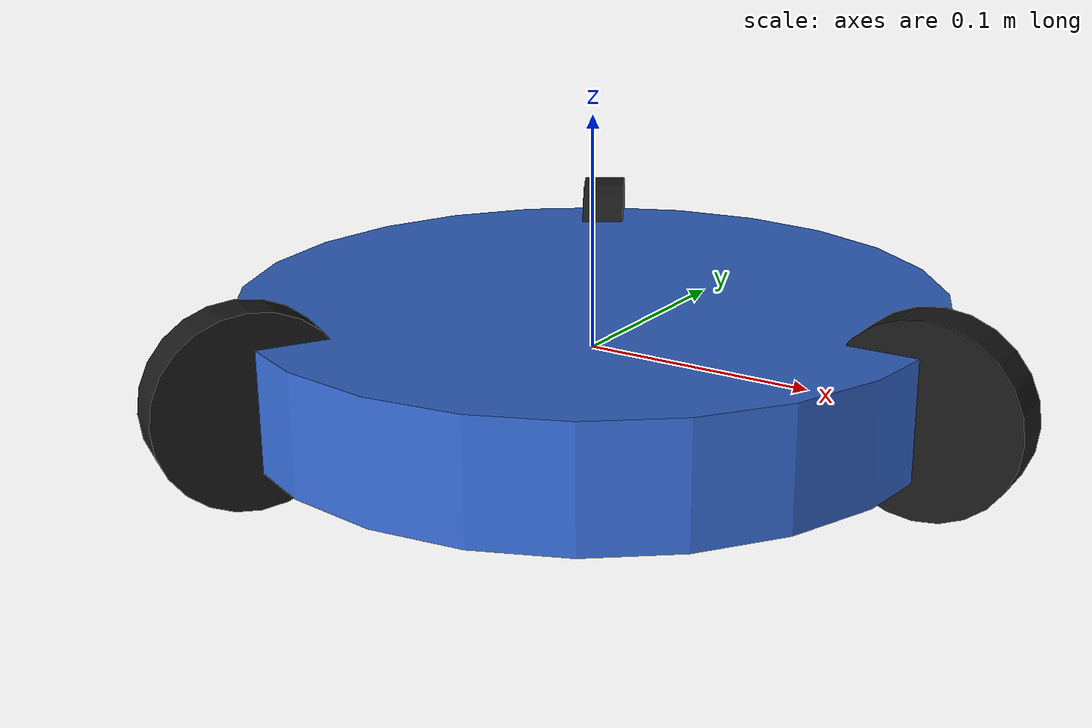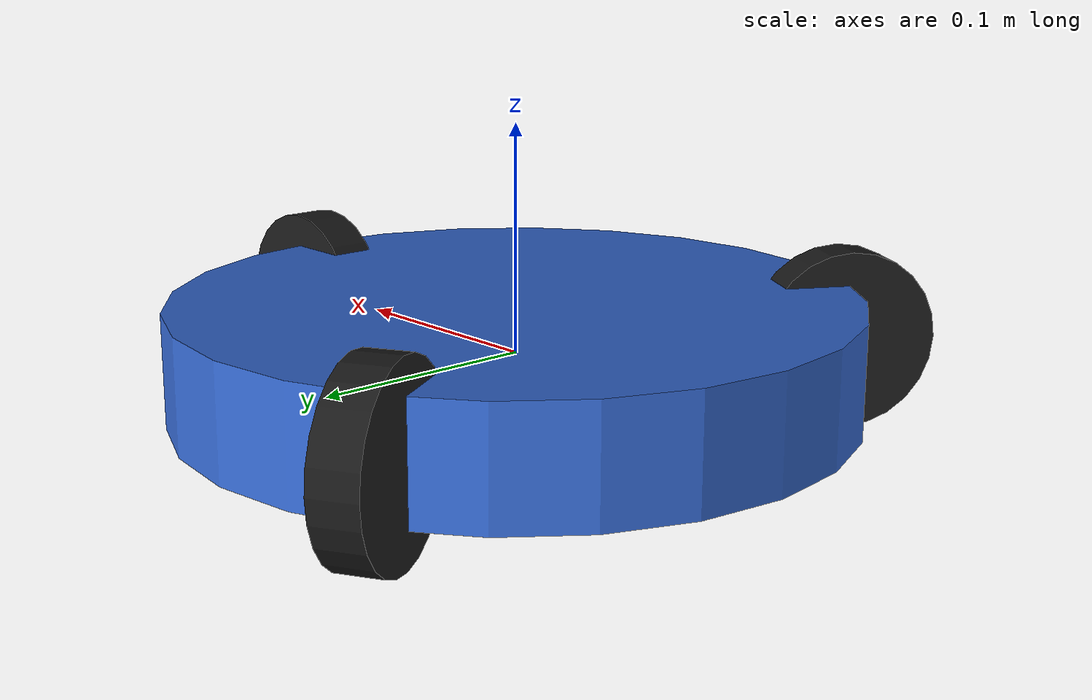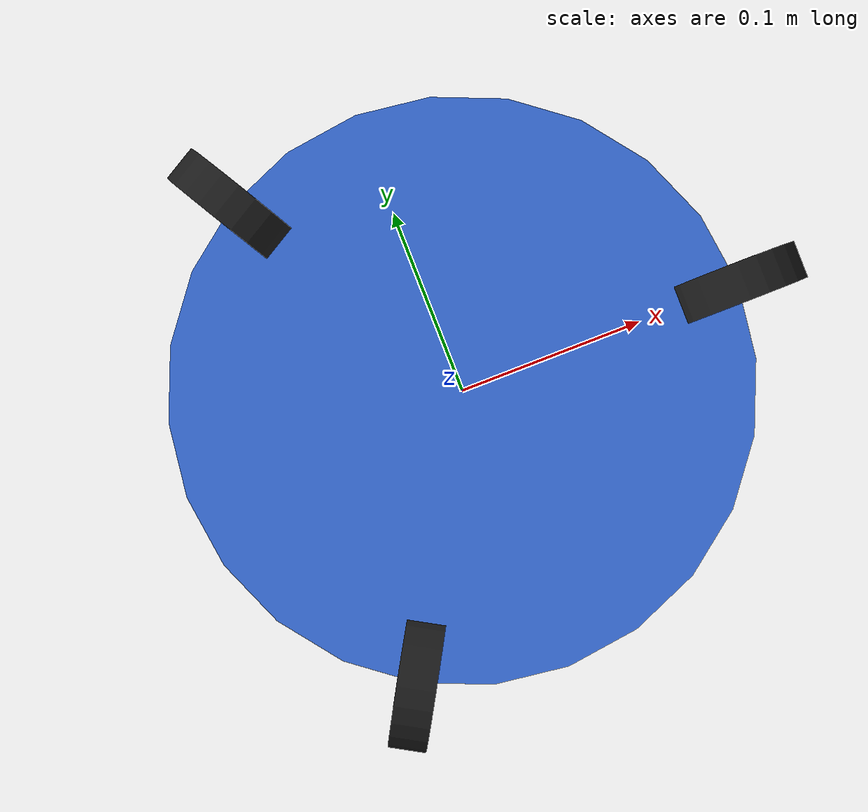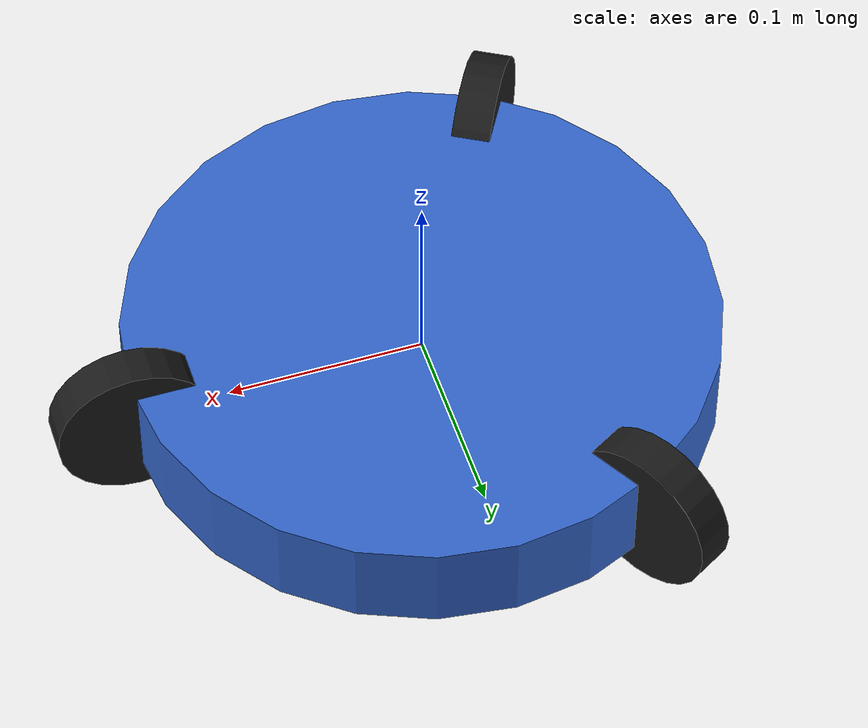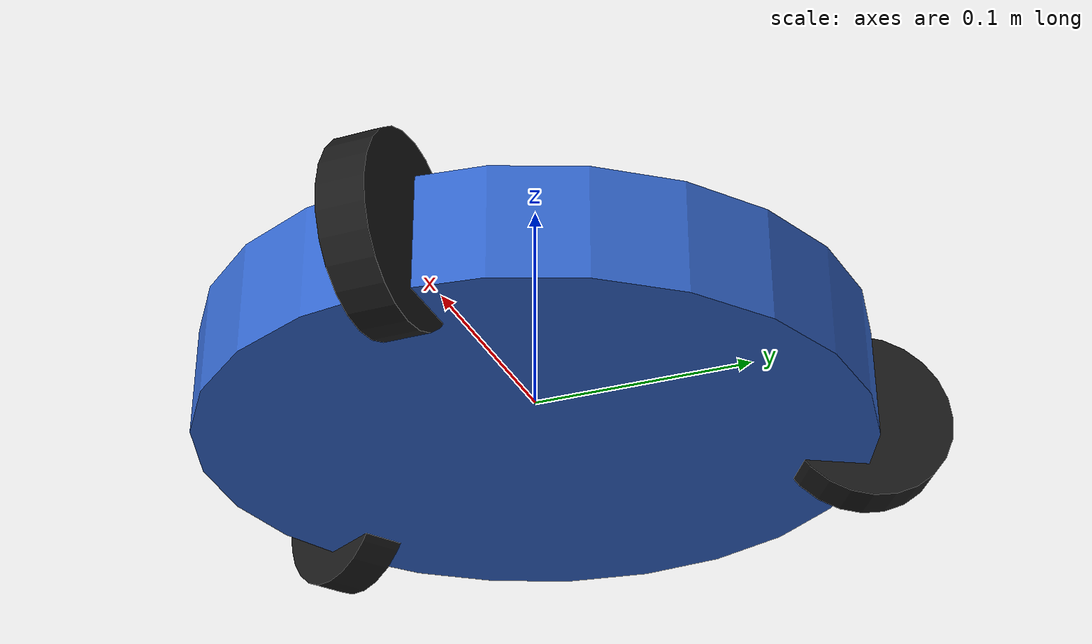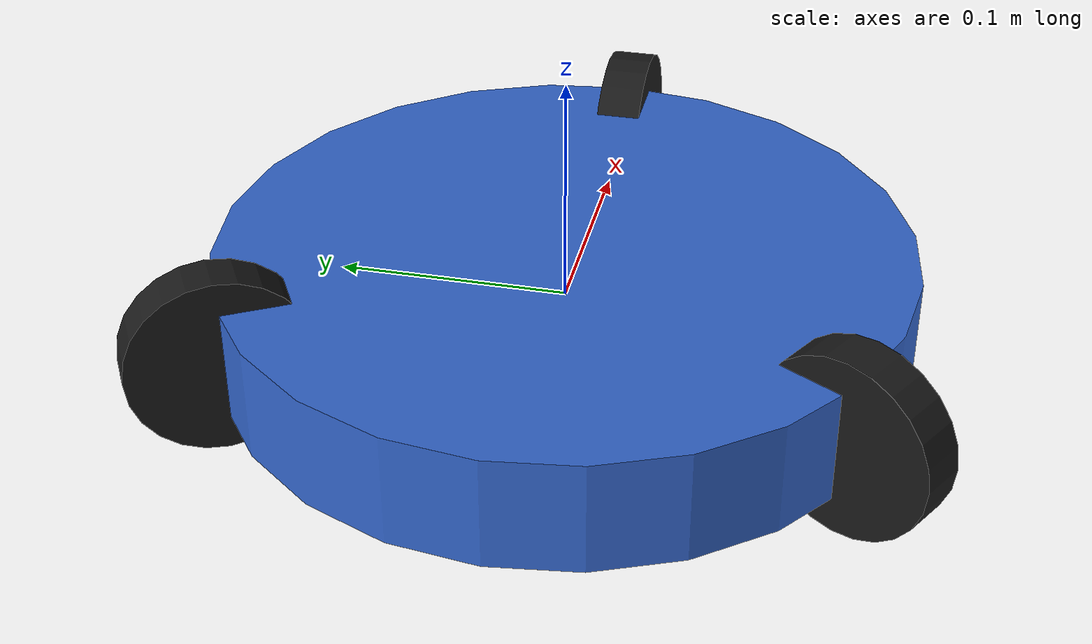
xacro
<?xml version="1.0"?>

<robot name="lkwrbot" xmlns:xacro="http://www.ros.org/wiki/xacro">

    <xacro:include filename="$(find lkwrbot_description)/urdf/materials.xacro"/>

    <xacro:include filename="$(find lkwrbot_description)/urdf/ros2_control.xacro"/>

    <xacro:include filename="$(find lkwrbot_description)/urdf/gazebo.xacro"/>

  <!-- Base Link             -->

  <link name="base_link">

    <visual>
      <geometry>
        <cylinder radius="0.15" length="0.05"/>
      </geometry>
      <material name="base_color"/>
    </visual>

    <collision>
      <geometry>
        <cylinder radius="0.15" length="0.05"/>
      </geometry>
    </collision>

    <inertial>
      <mass value="2.0"/>
      <origin xyz="0 0 0"/>
      <inertia
        ixx="0.01"
        ixy="0"
        ixz="0"
        iyy="0.01"
        iyz="0"
        izz="0.02"/>
    </inertial>

  </link>

  <!-- Wheel 1 Front         -->

  <link name="wheel_1">

    <visual>
      <origin rpy="1.5708 0 0"/>
      <geometry>
        <cylinder radius="0.04" length="0.02"/>
      </geometry>
      <material name="wheel_color"/>
    </visual>

    <collision>
      <origin rpy="1.5708 0 0"/>
      <geometry>
        <cylinder radius="0.04" length="0.02"/>
      </geometry>
    </collision>

    <inertial>
      <mass value="0.2"/>
      <origin xyz="0 0 0"/>
      <inertia
        ixx="0.0001"
        ixy="0"
        ixz="0"
        iyy="0.0001"
        iyz="0"
        izz="0.0002"/>
    </inertial>

  </link>

  <joint name="wheel_1_joint" type="continuous">
    <parent link="base_link"/>
    <child link="wheel_1"/>
    <origin xyz="0.15 0 0"
        rpy="0 0 0"/>
    <axis xyz="0 1 0"/>
  </joint>

  <!-- Wheel 2 Left Rear     -->

  <link name="wheel_2">

    <visual>
      <origin rpy="1.5708 0 0"/>
      <geometry>
        <cylinder radius="0.04" length="0.02"/>
      </geometry>
      <material name="wheel_color"/>
    </visual>

    <collision>
      <origin rpy="1.5708 0 0"/>
      <geometry>
        <cylinder radius="0.04" length="0.02"/>
      </geometry>
    </collision>

    <inertial>
      <mass value="0.2"/>
      <origin xyz="0 0 0"/>
      <inertia
        ixx="0.0001"
        ixy="0"
        ixz="0"
        iyy="0.0001"
        iyz="0"
        izz="0.0002"/>
    </inertial>

  </link>

  <joint name="wheel_2_joint" type="continuous">
    <parent link="base_link"/>
    <child link="wheel_2"/>
    <origin xyz="-0.075 0.1299 0"
        rpy="0 0 2.0944"/>
    <axis xyz="0 1 0"/>
  </joint>

  <!-- Wheel 3 Right Rear    -->

  <link name="wheel_3">

    <visual>
      <origin rpy="1.5708 0 0"/>
      <geometry>
        <cylinder radius="0.04" length="0.02"/>
      </geometry>
      <material name="wheel_color"/>
    </visual>

    <collision>
      <origin rpy="1.5708 0 0"/>
      <geometry>
        <cylinder radius="0.04" length="0.02"/>
      </geometry>
    </collision>

    <inertial>
      <mass value="0.2"/>
      <origin xyz="0 0 0"/>
      <inertia
        ixx="0.0001"
        ixy="0"
        ixz="0"
        iyy="0.0001"
        iyz="0"
        izz="0.0002"/>
    </inertial>

  </link>

  <joint name="wheel_3_joint" type="continuous">
    <parent link="base_link"/>
    <child link="wheel_3"/>
    <origin xyz="-0.075 -0.1299 0"
        rpy="0 0 -2.0944"/>
    <axis xyz="0 1 0"/>
  </joint>

</robot>

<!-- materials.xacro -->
<robot xmlns:xacro="http://www.ros.org/wiki/xacro">

    <!-- Base Material -->
    <material name="base_color">
        <color rgba="0.2 0.4 0.8 1.0"/>
    </material>

    <!-- Wheel Material -->
    <material name="wheel_color">
        <color rgba="0.1 0.1 0.1 1.0"/>
    </material>

</robot>
